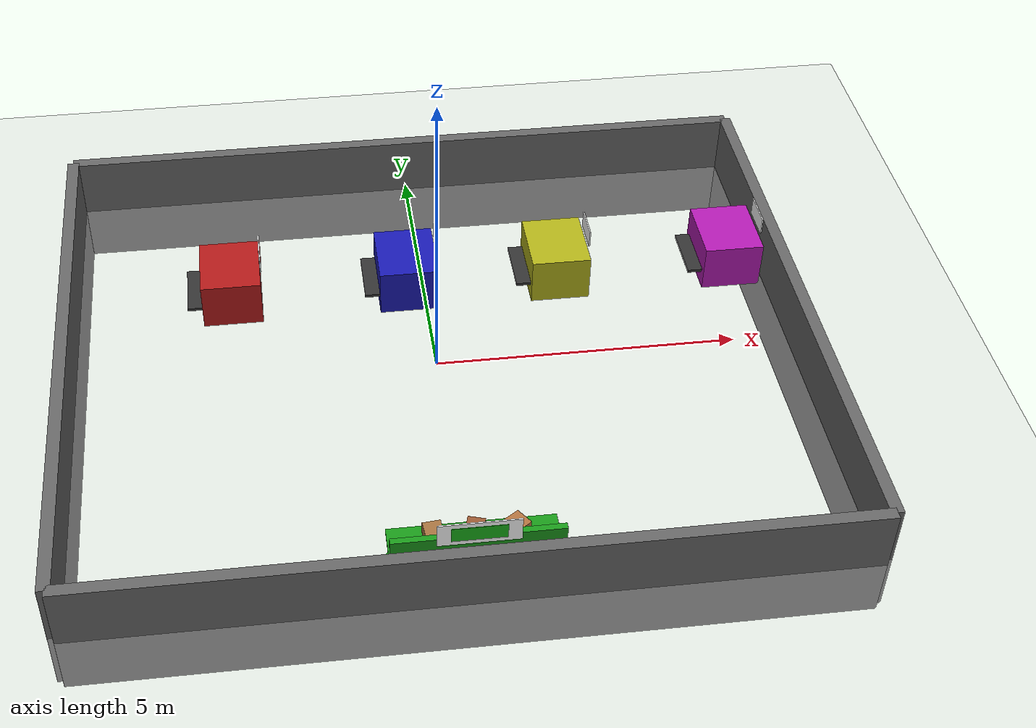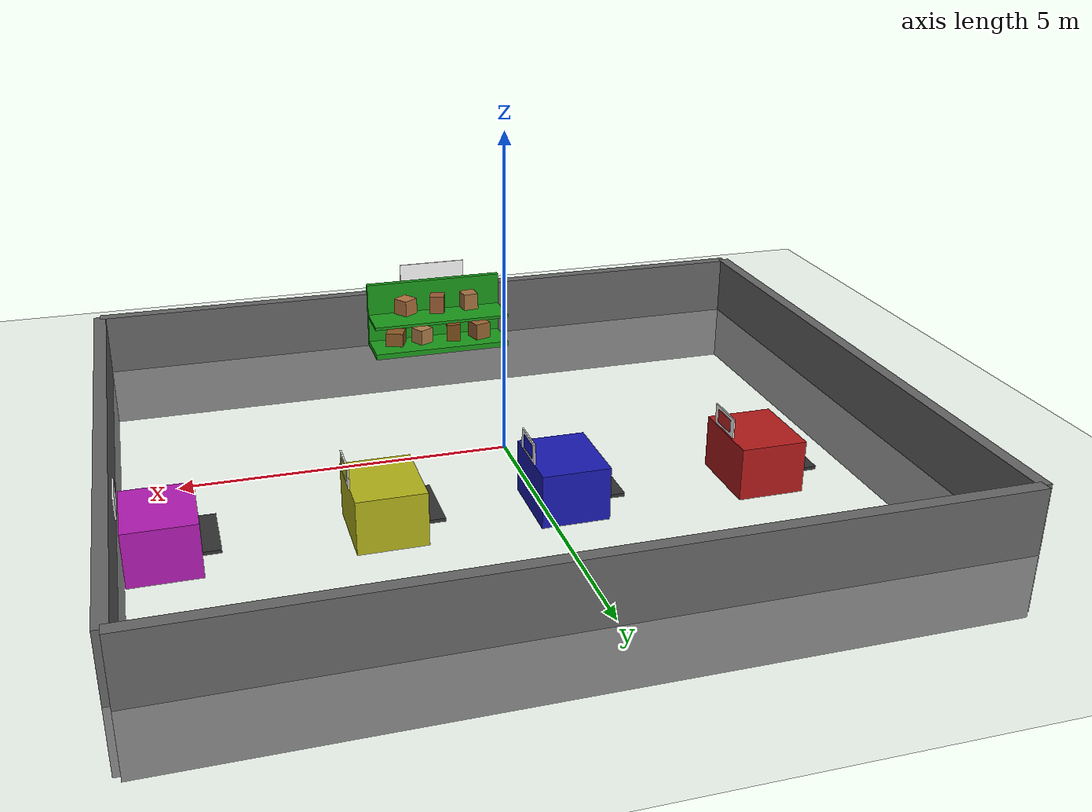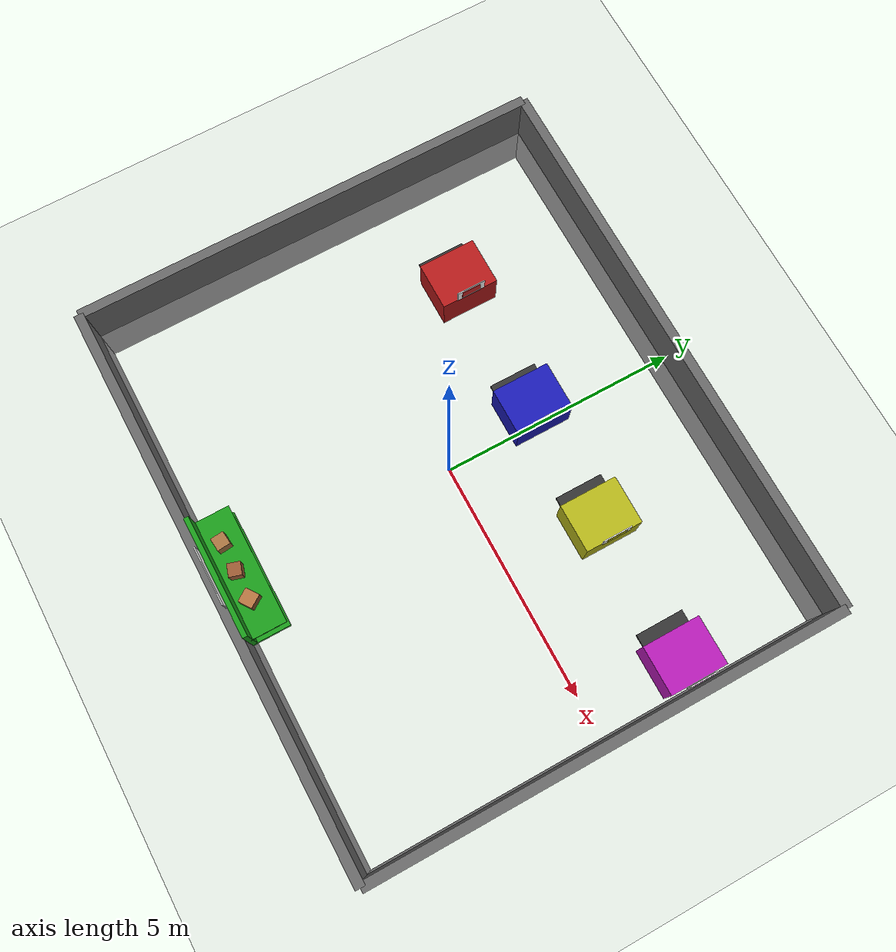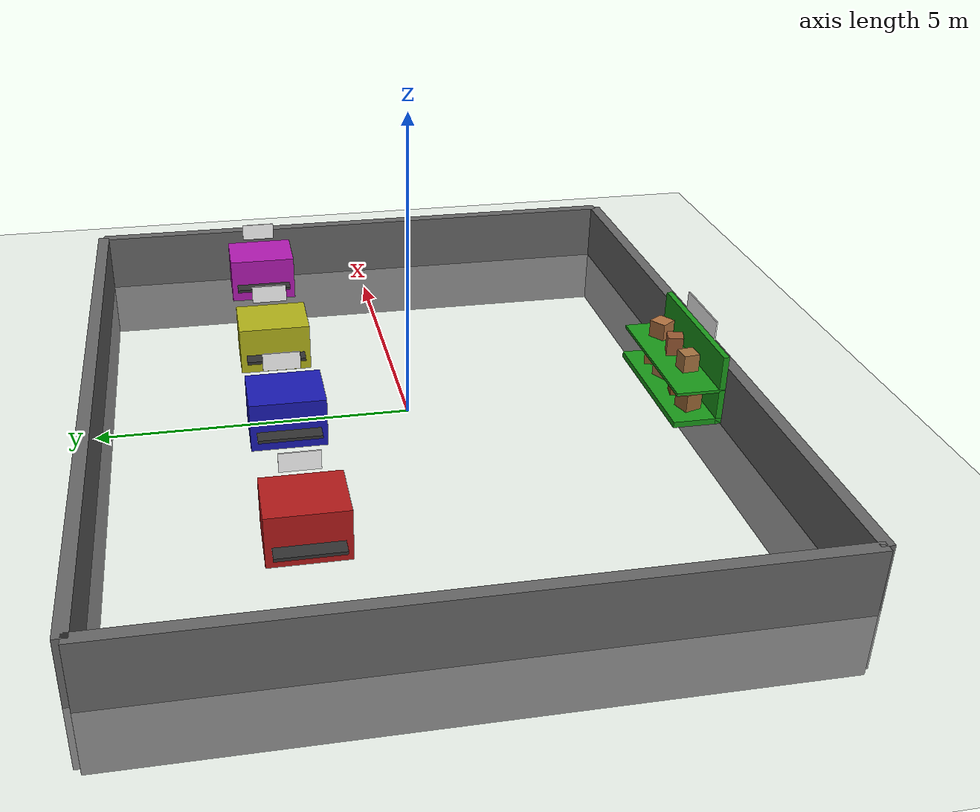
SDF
<?xml version="1.0"?>
<sdf version="1.6" xmlns:ignition="http://ignitionrobotics.org/schema">
  <world name="fms_layout1_realistic">
    <ignition:model_plugin_loading_timeout>120</ignition:model_plugin_loading_timeout>

    <physics type="ode">
      <real_time_update_rate>1000.0</real_time_update_rate>
      <max_step_size>0.001</max_step_size>
      <real_time_factor>1</real_time_factor>
    </physics>

    <include>
      <uri>model://sun</uri>
    </include>

    <include>
      <uri>model://ground_plane</uri>
    </include>

    <!-- ========== LAYOUT 1 (L1) - LINEAR ARRANGEMENT ========== -->

    <!-- Machine 1 (M1) - Red -->
    <model name="machine_1">
      <static>true</static>
      <pose>-3.3 2.0 0 0 0 0</pose>
      <link name="base">
        <!-- Machine body -->
        <collision name="body_collision">
          <geometry>
            <box>
              <size>1.0 1.2 0.8</size>
            </box>
          </geometry>
        </collision>
        <visual name="body_visual">
          <pose>0 0 0.4 0 0 0</pose>
          <geometry>
            <box>
              <size>1.0 1.2 0.8</size>
            </box>
          </geometry>
          <material>
            <ambient>0.7 0.1 0.1 1</ambient>
            <diffuse>0.7 0.1 0.1 1</diffuse>
          </material>
        </visual>

        <!-- Conveyor belt (BACK SIDE) -->
        <visual name="conveyor">
          <pose>-0.6 0 0.3 0 0 0</pose>
          <geometry>
            <box>
              <size>0.3 1.0 0.05</size>
            </box>
          </geometry>
          <material>
            <ambient>0.2 0.2 0.2 1</ambient>
            <diffuse>0.2 0.2 0.2 1</diffuse>
          </material>
        </visual>

        <!-- Control panel -->
        <visual name="panel">
          <pose>0.3 0.4 0.6 0 0.3 0</pose>
          <geometry>
            <box>
              <size>0.3 0.2 0.3</size>
            </box>
          </geometry>
          <material>
            <ambient>0.9 0.9 0.9 1</ambient>
            <diffuse>0.9 0.9 0.9 1</diffuse>
          </material>
        </visual>

        <!-- Label M1 with text -->
        <visual name="label_board">
          <pose>0.52 0 1.0 0 0 0</pose>
          <geometry>
            <box>
              <size>0.02 0.6 0.3</size>
            </box>
          </geometry>
          <material>
            <ambient>1 1 1 1</ambient>
            <diffuse>1 1 1 1</diffuse>
          </material>
        </visual>
        <visual name="label_text">
          <pose>0.53 0 1.0 0 0 0</pose>
          <geometry>
            <box>
              <size>0.01 0.4 0.2</size>
            </box>
          </geometry>
          <material>
            <ambient>0.8 0.1 0.1 1</ambient>
            <diffuse>0.8 0.1 0.1 1</diffuse>
            <script>
              <name>Gazebo/Red</name>
            </script>
          </material>
        </visual>
      </link>
    </model>

    <!-- Machine 2 (M2) - Blue -->
    <model name="machine_2">
      <static>true</static>
      <pose>-0.3 2.0 0 0 0 0</pose>
      <link name="base">
        <collision name="body_collision">
          <geometry>
            <box>
              <size>1.0 1.2 0.8</size>
            </box>
          </geometry>
        </collision>
        <visual name="body_visual">
          <pose>0 0 0.4 0 0 0</pose>
          <geometry>
            <box>
              <size>1.0 1.2 0.8</size>
            </box>
          </geometry>
          <material>
            <ambient>0.1 0.1 0.7 1</ambient>
            <diffuse>0.1 0.1 0.7 1</diffuse>
          </material>
        </visual>
        <visual name="conveyor">
          <pose>-0.6 0 0.3 0 0 0</pose>
          <geometry>
            <box>
              <size>0.3 1.0 0.05</size>
            </box>
          </geometry>
          <material>
            <ambient>0.2 0.2 0.2 1</ambient>
            <diffuse>0.2 0.2 0.2 1</diffuse>
          </material>
        </visual>
        <visual name="panel">
          <pose>0.3 0.4 0.6 0 0.3 0</pose>
          <geometry>
            <box>
              <size>0.3 0.2 0.3</size>
            </box>
          </geometry>
          <material>
            <ambient>0.9 0.9 0.9 1</ambient>
            <diffuse>0.9 0.9 0.9 1</diffuse>
          </material>
        </visual>
        <visual name="label_board">
          <pose>0.52 0 1.0 0 0 0</pose>
          <geometry>
            <box>
              <size>0.02 0.6 0.3</size>
            </box>
          </geometry>
          <material>
            <ambient>1 1 1 1</ambient>
            <diffuse>1 1 1 1</diffuse>
          </material>
        </visual>
        <visual name="label_text">
          <pose>0.53 0 1.0 0 0 0</pose>
          <geometry>
            <box>
              <size>0.01 0.4 0.2</size>
            </box>
          </geometry>
          <material>
            <ambient>0.1 0.1 0.8 1</ambient>
            <diffuse>0.1 0.1 0.8 1</diffuse>
          </material>
        </visual>
      </link>
    </model>

    <!-- Machine 3 (M3) - Yellow -->
    <model name="machine_3">
      <static>true</static>
      <pose>2.3 2.0 0 0 0 0</pose>
      <link name="base">
        <collision name="body_collision">
          <geometry>
            <box>
              <size>1.0 1.2 0.8</size>
            </box>
          </geometry>
        </collision>
        <visual name="body_visual">
          <pose>0 0 0.4 0 0 0</pose>
          <geometry>
            <box>
              <size>1.0 1.2 0.8</size>
            </box>
          </geometry>
          <material>
            <ambient>0.7 0.7 0.1 1</ambient>
            <diffuse>0.7 0.7 0.1 1</diffuse>
          </material>
        </visual>
        <visual name="conveyor">
          <pose>-0.6 0 0.3 0 0 0</pose>
          <geometry>
            <box>
              <size>0.3 1.0 0.05</size>
            </box>
          </geometry>
          <material>
            <ambient>0.2 0.2 0.2 1</ambient>
            <diffuse>0.2 0.2 0.2 1</diffuse>
          </material>
        </visual>
        <visual name="panel">
          <pose>0.3 0.4 0.6 0 0.3 0</pose>
          <geometry>
            <box>
              <size>0.3 0.2 0.3</size>
            </box>
          </geometry>
          <material>
            <ambient>0.9 0.9 0.9 1</ambient>
            <diffuse>0.9 0.9 0.9 1</diffuse>
          </material>
        </visual>
        <visual name="label_board">
          <pose>0.52 0 1.0 0 0 0</pose>
          <geometry>
            <box>
              <size>0.02 0.6 0.3</size>
            </box>
          </geometry>
          <material>
            <ambient>1 1 1 1</ambient>
            <diffuse>1 1 1 1</diffuse>
          </material>
        </visual>
        <visual name="label_text">
          <pose>0.53 0 1.0 0 0 0</pose>
          <geometry>
            <box>
              <size>0.01 0.4 0.2</size>
            </box>
          </geometry>
          <material>
            <ambient>0.8 0.8 0.1 1</ambient>
            <diffuse>0.8 0.8 0.1 1</diffuse>
          </material>
        </visual>
      </link>
    </model>

    <!-- Machine 4 (M4) - Magenta -->
    <model name="machine_4">
      <static>true</static>
      <pose>5.3 2.0 0 0 0 0</pose>
      <link name="base">
        <collision name="body_collision">
          <geometry>
            <box>
              <size>1.0 1.2 0.8</size>
            </box>
          </geometry>
        </collision>
        <visual name="body_visual">
          <pose>0 0 0.4 0 0 0</pose>
          <geometry>
            <box>
              <size>1.0 1.2 0.8</size>
            </box>
          </geometry>
          <material>
            <ambient>0.7 0.1 0.7 1</ambient>
            <diffuse>0.7 0.1 0.7 1</diffuse>
          </material>
        </visual>
        <visual name="conveyor">
          <pose>-0.6 0 0.3 0 0 0</pose>
          <geometry>
            <box>
              <size>0.3 1.0 0.05</size>
            </box>
          </geometry>
          <material>
            <ambient>0.2 0.2 0.2 1</ambient>
            <diffuse>0.2 0.2 0.2 1</diffuse>
          </material>
        </visual>
        <visual name="panel">
          <pose>0.3 0.4 0.6 0 0.3 0</pose>
          <geometry>
            <box>
              <size>0.3 0.2 0.3</size>
            </box>
          </geometry>
          <material>
            <ambient>0.9 0.9 0.9 1</ambient>
            <diffuse>0.9 0.9 0.9 1</diffuse>
          </material>
        </visual>
        <visual name="label_board">
          <pose>0.52 0 1.0 0 0 0</pose>
          <geometry>
            <box>
              <size>0.02 0.6 0.3</size>
            </box>
          </geometry>
          <material>
            <ambient>1 1 1 1</ambient>
            <diffuse>1 1 1 1</diffuse>
          </material>
        </visual>
        <visual name="label_text">
          <pose>0.53 0 1.0 0 0 0</pose>
          <geometry>
            <box>
              <size>0.01 0.4 0.2</size>
            </box>
          </geometry>
          <material>
            <ambient>0.8 0.1 0.8 1</ambient>
            <diffuse>0.8 0.1 0.8 1</diffuse>
          </material>
        </visual>
      </link>
    </model>

    <!-- Load/Unload Station - Shelf with boxes (MOVED FURTHER DOWN) -->
    <model name="load_unload_station">
      <static>true</static>
      <pose>0 -4.5 0 0 0 0</pose>
      <link name="shelf">
        <!-- Shelf frame -->
        <collision name="shelf_collision">
          <geometry>
            <box>
              <size>2.5 0.8 1.2</size>
            </box>
          </geometry>
        </collision>
        <visual name="shelf_back">
          <pose>0 -0.35 0.6 0 0 0</pose>
          <geometry>
            <box>
              <size>2.5 0.1 1.2</size>
            </box>
          </geometry>
          <material>
            <ambient>0.1 0.6 0.1 1</ambient>
            <diffuse>0.1 0.6 0.1 1</diffuse>
          </material>
        </visual>

        <!-- Shelf bottom -->
        <visual name="shelf_bottom">
          <pose>0 0 0.05 0 0 0</pose>
          <geometry>
            <box>
              <size>2.5 0.8 0.1</size>
            </box>
          </geometry>
          <material>
            <ambient>0.1 0.6 0.1 1</ambient>
            <diffuse>0.1 0.6 0.1 1</diffuse>
          </material>
        </visual>

        <!-- Shelf middle -->
        <visual name="shelf_middle">
          <pose>0 0 0.6 0 0 0</pose>
          <geometry>
            <box>
              <size>2.5 0.8 0.05</size>
            </box>
          </geometry>
          <material>
            <ambient>0.1 0.6 0.1 1</ambient>
            <diffuse>0.1 0.6 0.1 1</diffuse>
          </material>
        </visual>

        <!-- Box 1 (bottom shelf) -->
        <visual name="box1">
          <pose>-0.8 0 0.25 0 0 0.3</pose>
          <geometry>
            <box>
              <size>0.3 0.3 0.3</size>
            </box>
          </geometry>
          <material>
            <ambient>0.6 0.4 0.2 1</ambient>
            <diffuse>0.6 0.4 0.2 1</diffuse>
          </material>
        </visual>

        <!-- Box 2 -->
        <visual name="box2">
          <pose>-0.3 0 0.25 0 0 -0.2</pose>
          <geometry>
            <box>
              <size>0.25 0.25 0.35</size>
            </box>
          </geometry>
          <material>
            <ambient>0.5 0.3 0.1 1</ambient>
            <diffuse>0.5 0.3 0.1 1</diffuse>
          </material>
        </visual>

        <!-- Box 3 -->
        <visual name="box3">
          <pose>0.3 0 0.25 0 0 0.5</pose>
          <geometry>
            <box>
              <size>0.28 0.28 0.28</size>
            </box>
          </geometry>
          <material>
            <ambient>0.7 0.5 0.3 1</ambient>
            <diffuse>0.7 0.5 0.3 1</diffuse>
          </material>
        </visual>

        <!-- Box 4 -->
        <visual name="box4">
          <pose>0.8 0 0.25 0 0 -0.4</pose>
          <geometry>
            <box>
              <size>0.32 0.32 0.25</size>
            </box>
          </geometry>
          <material>
            <ambient>0.55 0.35 0.15 1</ambient>
            <diffuse>0.55 0.35 0.15 1</diffuse>
          </material>
        </visual>

        <!-- Box 5 (top shelf) -->
        <visual name="box5">
          <pose>-0.6 0 0.85 0 0 0.1</pose>
          <geometry>
            <box>
              <size>0.27 0.27 0.3</size>
            </box>
          </geometry>
          <material>
            <ambient>0.65 0.45 0.25 1</ambient>
            <diffuse>0.65 0.45 0.25 1</diffuse>
          </material>
        </visual>

        <!-- Box 6 -->
        <visual name="box6">
          <pose>0 0 0.85 0 0 -0.3</pose>
          <geometry>
            <box>
              <size>0.26 0.26 0.32</size>
            </box>
          </geometry>
          <material>
            <ambient>0.6 0.35 0.2 1</ambient>
            <diffuse>0.6 0.35 0.2 1</diffuse>
          </material>
        </visual>

        <!-- Box 7 -->
        <visual name="box7">
          <pose>0.6 0 0.85 0 0 0.6</pose>
          <geometry>
            <box>
              <size>0.29 0.29 0.29</size>
            </box>
          </geometry>
          <material>
            <ambient>0.7 0.45 0.25 1</ambient>
            <diffuse>0.7 0.45 0.25 1</diffuse>
          </material>
        </visual>

        <!-- L/U Label Board (white) -->
        <visual name="label_board">
          <pose>0 -0.42 1.3 0 0 0</pose>
          <geometry>
            <box>
              <size>1.2 0.02 0.4</size>
            </box>
          </geometry>
          <material>
            <ambient>1 1 1 1</ambient>
            <diffuse>1 1 1 1</diffuse>
          </material>
        </visual>

        <!-- L/U Text (green to match shelf) -->
        <visual name="label_text">
          <pose>0 -0.43 1.3 0 0 0</pose>
          <geometry>
            <box>
              <size>0.8 0.01 0.25</size>
            </box>
          </geometry>
          <material>
            <ambient>0.1 0.7 0.1 1</ambient>
            <diffuse>0.1 0.7 0.1 1</diffuse>
          </material>
        </visual>
      </link>
    </model>

    <!-- Boundary walls -->
    <model name="wall_north">
      <static>true</static>
      <pose>0 5 0 0 0 0</pose>
      <link name="link">
        <collision name="collision">
          <geometry>
            <box>
              <size>12 0.2 2.0</size>
            </box>
          </geometry>
        </collision>
        <visual name="visual">
          <geometry>
            <box>
              <size>12 0.2 2.0</size>
            </box>
          </geometry>
          <material>
            <ambient>0.4 0.4 0.4 1</ambient>
            <diffuse>0.4 0.4 0.4 1</diffuse>
          </material>
        </visual>
      </link>
    </model>

    <model name="wall_south">
      <static>true</static>
      <pose>0 -5 0 0 0 0</pose>
      <link name="link">
        <collision name="collision">
          <geometry>
            <box>
              <size>12 0.2 2.0</size>

            </box>
          </geometry>
        </collision>
        <visual name="visual">
          <geometry>
            <box>
              <size>12 0.2 2.0</size>
            </box>
          </geometry>
          <material>
            <ambient>0.4 0.4 0.4 1</ambient>
            <diffuse>0.4 0.4 0.4 1</diffuse>
          </material>
        </visual>
      </link>
    </model>

    <model name="wall_east">
      <static>true</static>
      <pose>6 0 0 0 0 0</pose>
      <link name="link">
        <collision name="collision">
          <geometry>
            <box>
              <size>0.2 10 2.0</size>
            </box>
          </geometry>
        </collision>
        <visual name="visual">
          <geometry>
            <box>
              <size>0.2 10 2.0</size>
            </box>
          </geometry>
          <material>
            <ambient>0.4 0.4 0.4 1</ambient>
            <diffuse>0.4 0.4 0.4 1</diffuse>
          </material>
        </visual>
      </link>
    </model>

    <model name="wall_west">
      <static>true</static>
      <pose>-6 0 0 0 0 0</pose>
      <link name="link">
        <collision name="collision">
          <geometry>
            <box>
              <size>0.2 10 2.0</size>
            </box>
          </geometry>
        </collision>
        <visual name="visual">
          <geometry>
            <box>
              <size>0.2 10 2.0</size>
            </box>
          </geometry>
          <material>
            <ambient>0.4 0.4 0.4 1</ambient>
            <diffuse>0.4 0.4 0.4 1</diffuse>
          </material>
        </visual>
      </link>
    </model>

    <scene>
      <ambient>0.6 0.6 0.6 1</ambient>
      <background>0.7 0.7 0.7 1</background>
      <shadows>true</shadows>
    </scene>

    <gui fullscreen='0'>
      <camera name='user_camera'>
        <pose>0 -10 8 0 0.5 1.57</pose>
      </camera>
    </gui>

  </world>
</sdf>
